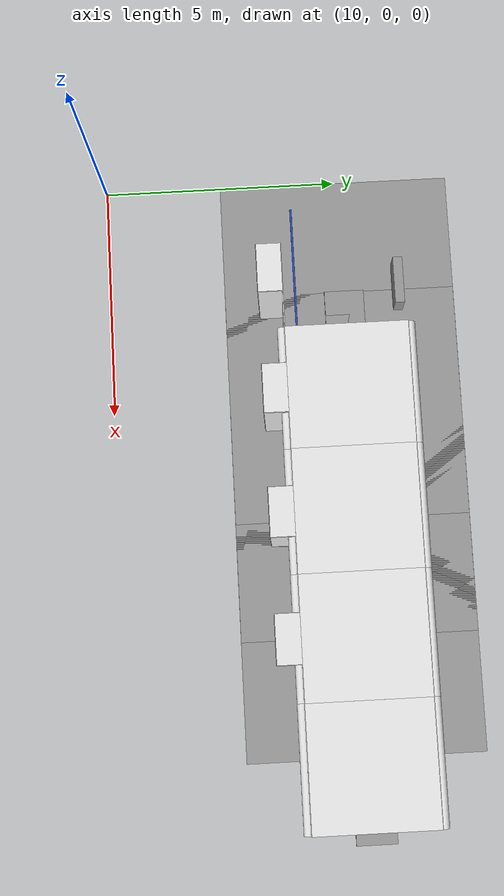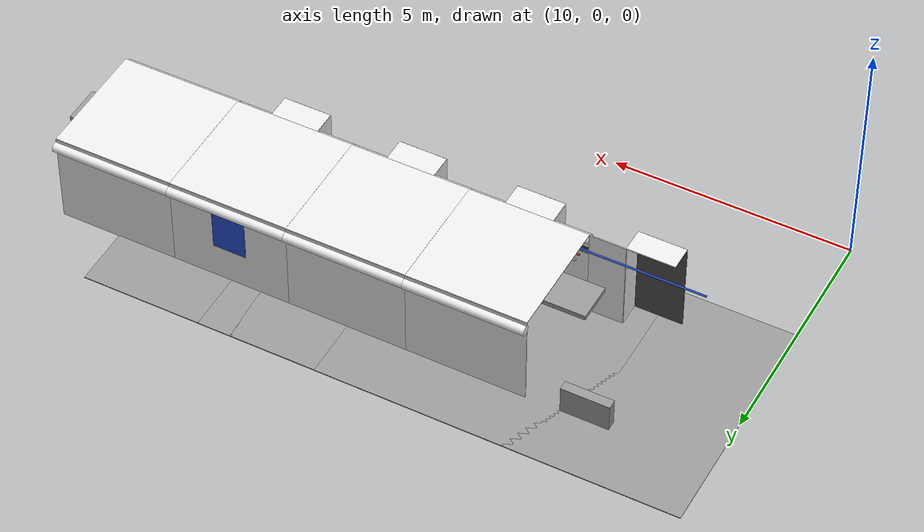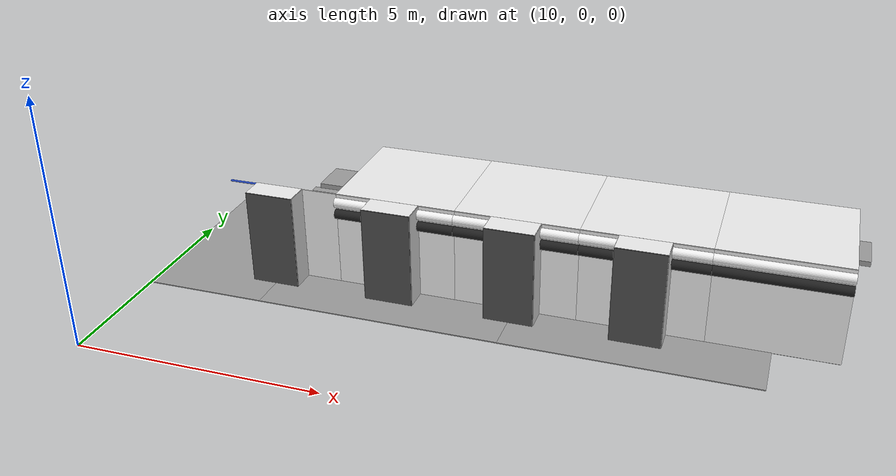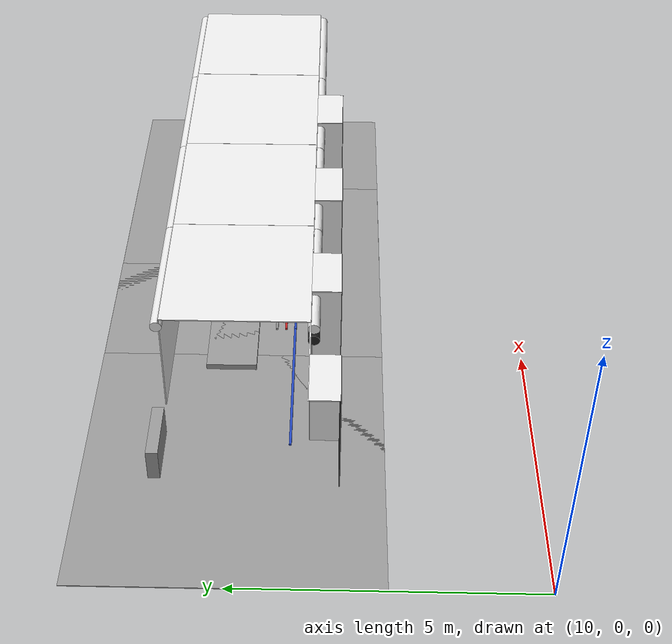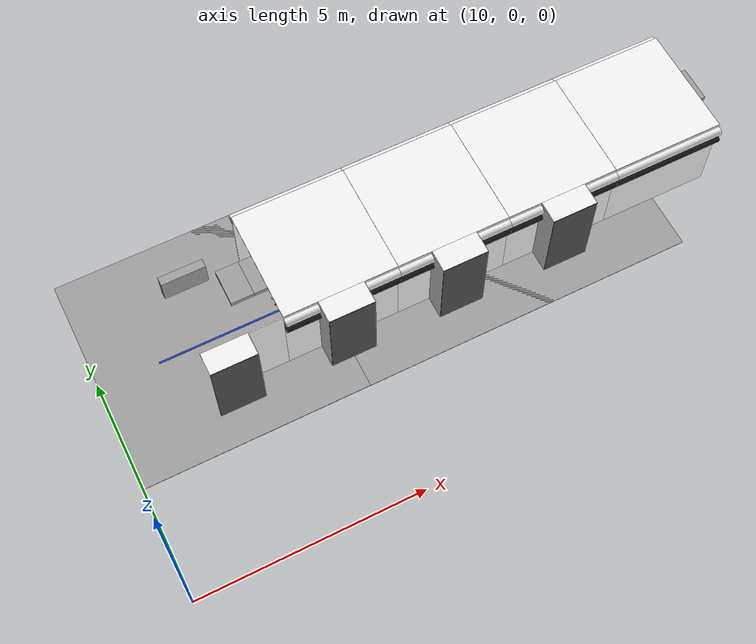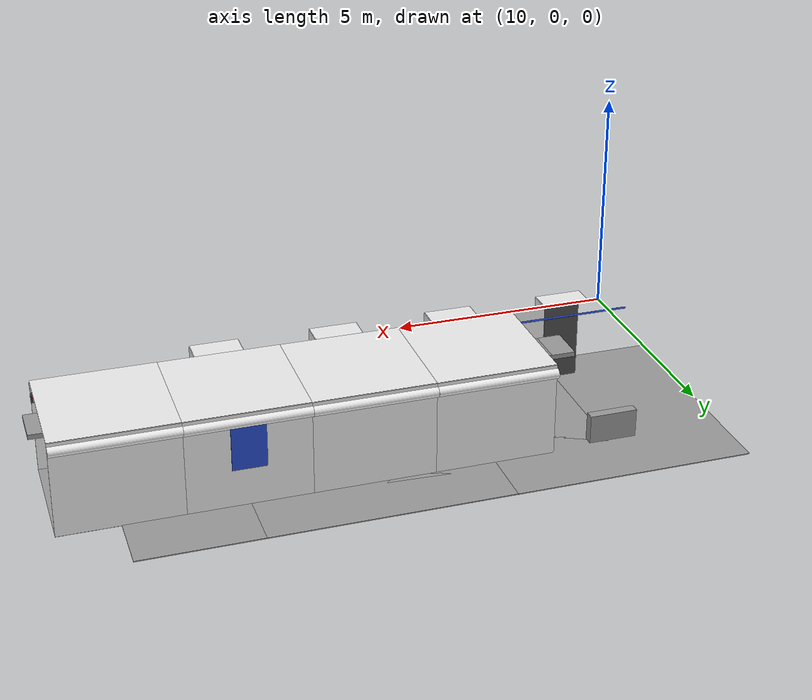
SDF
<sdf version="1.6">
 <world name="default">
  <model name="ceiling_1_5_2_2_1">
   <pose>13.5 5.0 1.7 0.0 0.0 -1.57</pose>
   <link name="link_1">
    <visual name="visual">
     <geometry><box><size>0.8 1 0.1</size></box></geometry>
     <material>
      <script><uri>file://media/materials/scripts/gazebo.material</uri><name>Gazebo/Grey</name></script>
     </material>
    </visual>
    <collision name="collision"><geometry><box><size>0.8 1 0.1</size></box></geometry></collision>
   </link>
   <static>1</static>
  </model>
  <model name="blue_pipe_right_5_2_0_1">
   <static>1</static>
   <pose>12.5 5.0 1.84 0.0 0.0 -1.57</pose>
   <link name="link_0">
    <visual name="visual">
     <pose>1 0 0 1.57 0 0</pose>
     <geometry><cylinder><radius>0.02</radius><length>2.5</length></cylinder></geometry>
     <material>
      <script><uri>file://media/materials/scripts/gazebo.material</uri><name>Gazebo/Blue</name></script>
     </material>
    </visual>
    <collision name="collision">
     <pose>1 0 0 1.57 0 0</pose>
     <geometry><cylinder><radius>0.02</radius><length>2.5</length></cylinder></geometry>
    </collision>
   </link>
  </model>
  <model name="wall_bottom_5_2_0_1">
   <static>1</static>
   <pose>12.5 5.0 0.0 0.0 0.0 -1.57</pose>
   <link name="link">
    <collision name="collision"><geometry><box><size>5.0 5.0 0.02</size></box></geometry></collision>
    <visual name="visual">
     <material>
      <script><name>Gazebo/Grey</name><uri>file://media/materials/scripts/gazebo.material</uri></script>
     </material>
     <geometry><box><size>5.0 5.0 0.02</size></box></geometry>
    </visual>
   </link>
  </model>
  <model name="wall_right_front_left_5_2_0_1">
   <static>1</static>
   <pose>13.375 3.75 1.0 0.0 0.0 0.0</pose>
   <link name="link">
    <collision name="collision"><geometry><box><size>0.75 0.02 2.0</size></box></geometry></collision>
    <visual name="visual">
     <material>
      <script><name>Gazebo/White</name><uri>file://media/materials/scripts/gazebo.material</uri></script>
     </material>
     <geometry><box><size>0.75 0.02 2.0</size></box></geometry>
    </visual>
   </link>
  </model>
  <model name="wall_right_front_up_5_2_0_1">
   <static>1</static>
   <pose>12.5 3.75 2.0 0.0 0.0 0.0</pose>
   <link name="link">
    <collision name="collision"><geometry><box><size>1.0 0.02 0.001</size></box></geometry></collision>
    <visual name="visual">
     <material>
      <script><name>Gazebo/White</name><uri>file://media/materials/scripts/gazebo.material</uri></script>
     </material>
     <geometry><box><size>1.0 0.02 0.001</size></box></geometry>
    </visual>
   </link>
  </model>
  <model name="wall_right_inside_back_5_2_0_1">
   <static>1</static>
   <pose>12.5 3.25 1.0 0.0 0.0 0.0</pose>
   <link name="link">
    <collision name="collision"><geometry><box><size>1 0.02 2</size></box></geometry></collision>
    <visual name="visual">
     <material>
      <script><name>Gazebo/DarkGrey</name><uri>file://media/materials/scripts/gazebo.material</uri></script>
     </material>
     <geometry><box><size>1 0.02 2</size></box></geometry>
    </visual>
   </link>
  </model>
  <model name="wall_right_inside_left_5_2_0_1">
   <static>1</static>
   <pose>13.0 3.5 1.0 0.0 0.0 -1.57</pose>
   <link name="link">
    <collision name="collision"><geometry><box><size>0.5 0.02 2</size></box></geometry></collision>
    <visual name="visual">
     <material>
      <script><name>Gazebo/White</name><uri>file://media/materials/scripts/gazebo.material</uri></script>
     </material>
     <geometry><box><size>0.5 0.02 2</size></box></geometry>
    </visual>
   </link>
  </model>
  <model name="wall_right_inside_top_5_2_0_1">
   <static>1</static>
   <pose>12.5 3.5 2.0 1.57 0.0 0.0</pose>
   <link name="link">
    <collision name="collision"><geometry><box><size>1 0.02 0.5</size></box></geometry></collision>
    <visual name="visual">
     <material>
      <script><name>Gazebo/White</name><uri>file://media/materials/scripts/gazebo.material</uri></script>
     </material>
     <geometry><box><size>1 0.02 0.5</size></box></geometry>
    </visual>
   </link>
  </model>
  <model name="panel_5_2_0_1">
   <static>1</static>
   <pose>12.5 6.25 0.44 0.0 0.0 -1.57</pose>
   <link name="link">
    <collision name="collision"><geometry><box><size>0.2 1 0.6</size></box></geometry></collision>
    <visual name="visual">
     <material>
      <script><name>Gazebo/Grey</name><uri>file://media/materials/scripts/gazebo.material</uri></script>
     </material>
     <geometry><box><size>0.2 1 0.6</size></box></geometry>
    </visual>
   </link>
  </model>
  <model name="wall_left_6_2_0_1">
   <static>1</static>
   <pose>15.0 6.25 1.0 0.0 0.0 0.0</pose>
   <link name="link">
    <collision name="collision"><geometry><box><size>2.5 0.02 2.0</size></box></geometry></collision>
    <visual name="visual">
     <material>
      <script><name>Gazebo/White</name><uri>file://media/materials/scripts/gazebo.material</uri></script>
     </material>
     <geometry><box><size>2.5 0.02 2.0</size></box></geometry>
    </visual>
   </link>
  </model>
  <model name="wall_top_6_2_0_1">
   <static>1</static>
   <pose>15.0 5.0 2.0 1.57 0.0 -1.57</pose>
   <link name="link">
    <collision name="collision"><geometry><box><size>2.5 0.02 2.5</size></box></geometry></collision>
    <visual name="visual">
     <material>
      <script><name>Gazebo/White</name><uri>file://media/materials/scripts/gazebo.material</uri></script>
     </material>
     <geometry><box><size>2.5 0.02 2.5</size></box></geometry>
    </visual>
   </link>
  </model>
  <model name="ceiling_1_6_2_0_1">
   <pose>15.0 5.0 1.7 0.0 0.0 -1.57</pose>
   <link name="link_1">
    <visual name="visual">
     <geometry><box><size>0.8 1 0.1</size></box></geometry>
     <material>
      <script><uri>file://media/materials/scripts/gazebo.material</uri><name>Gazebo/Grey</name></script>
     </material>
    </visual>
    <collision name="collision"><geometry><box><size>0.8 1 0.1</size></box></geometry></collision>
   </link>
   <static>1</static>
  </model>
  <model name="ceiling_1_6_2_1_1">
   <pose>14.0 5.0 1.7 0.0 0.0 -1.57</pose>
   <link name="link_1">
    <visual name="visual">
     <geometry><box><size>0.8 1 0.1</size></box></geometry>
     <material>
      <script><uri>file://media/materials/scripts/gazebo.material</uri><name>Gazebo/Grey</name></script>
     </material>
    </visual>
    <collision name="collision"><geometry><box><size>0.8 1 0.1</size></box></geometry></collision>
   </link>
   <static>1</static>
  </model>
  <model name="ceiling_1_6_2_2_1">
   <pose>16.0 5.0 1.7 0.0 0.0 -1.57</pose>
   <link name="link_1">
    <visual name="visual">
     <geometry><box><size>0.8 1 0.1</size></box></geometry>
     <material>
      <script><uri>file://media/materials/scripts/gazebo.material</uri><name>Gazebo/Grey</name></script>
     </material>
    </visual>
    <collision name="collision"><geometry><box><size>0.8 1 0.1</size></box></geometry></collision>
   </link>
   <static>1</static>
  </model>
  <model name="white_pipe_left_6_2_0_1">
   <static>1</static>
   <pose>15.0 5.0 1.84 0.0 0.0 -1.57</pose>
   <link name="link_0">
    <visual name="visual">
     <pose>-1.3 0 0 1.57 0 0</pose>
     <geometry><cylinder><radius>0.1</radius><length>2.5</length></cylinder></geometry>
     <material>
      <script><uri>file://media/materials/scripts/gazebo.material</uri><name>Gazebo/White</name></script>
     </material>
    </visual>
    <collision name="collision">
     <pose>-1.3 0 0 1.57 0 0</pose>
     <geometry><cylinder><radius>0.1</radius><length>2.5</length></cylinder></geometry>
    </collision>
   </link>
  </model>
  <model name="white_pipe_right_6_2_0_1">
   <static>1</static>
   <pose>15.0 5.0 1.84 0.0 0.0 -1.57</pose>
   <link name="link_0">
    <visual name="visual">
     <pose>1.3 0 0 1.57 0 0</pose>
     <geometry><cylinder><radius>0.1</radius><length>2.5</length></cylinder></geometry>
     <material>
      <script><uri>file://media/materials/scripts/gazebo.material</uri><name>Gazebo/White</name></script>
     </material>
    </visual>
    <collision name="collision">
     <pose>1.3 0 0 1.57 0 0</pose>
     <geometry><cylinder><radius>0.1</radius><length>2.5</length></cylinder></geometry>
    </collision>
   </link>
  </model>
  <model name="black_pipe_right_6_2_0_1">
   <static>1</static>
   <pose>15.0 5.0 1.84 0.0 0.0 -1.57</pose>
   <link name="link_0">
    <visual name="visual">
     <pose>1.3 0 -0.25 1.57 0 0</pose>
     <geometry><cylinder><radius>0.1</radius><length>2.5</length></cylinder></geometry>
     <material>
      <script><uri>file://media/materials/scripts/gazebo.material</uri><name>Gazebo/Black</name></script>
     </material>
    </visual>
    <collision name="collision">
     <pose>1.3 0 -0.25 1.57 0 0</pose>
     <geometry><cylinder><radius>0.1</radius><length>2.5</length></cylinder></geometry>
    </collision>
   </link>
  </model>
  <model name="grey_pipe_right_6_2_0_1">
   <static>1</static>
   <pose>15.0 5.0 1.84 0.0 0.0 -1.57</pose>
   <link name="link_0">
    <visual name="visual">
     <pose>0.7 0 0 1.57 0 0</pose>
     <geometry><cylinder><radius>0.02</radius><length>2.5</length></cylinder></geometry>
     <material>
      <script><uri>file://media/materials/scripts/gazebo.material</uri><name>Gazebo/Grey</name></script>
     </material>
    </visual>
    <collision name="collision">
     <pose>0.7 0 0 1.57 0 0</pose>
     <geometry><cylinder><radius>0.02</radius><length>2.5</length></cylinder></geometry>
    </collision>
   </link>
  </model>
  <model name="red_pipe_right_6_2_0_1">
   <static>1</static>
   <pose>15.0 5.0 1.84 0.0 0.0 -1.57</pose>
   <link name="link_0">
    <visual name="visual">
     <pose>0.85 0 0 1.57 0 0</pose>
     <geometry><cylinder><radius>0.02</radius><length>2.5</length></cylinder></geometry>
     <material>
      <script><uri>file://media/materials/scripts/gazebo.material</uri><name>Gazebo/Red</name></script>
     </material>
    </visual>
    <collision name="collision">
     <pose>0.85 0 0 1.57 0 0</pose>
     <geometry><cylinder><radius>0.02</radius><length>2.5</length></cylinder></geometry>
    </collision>
   </link>
  </model>
  <model name="blue_pipe_right_6_2_0_1">
   <static>1</static>
   <pose>15.0 5.0 1.84 0.0 0.0 -1.57</pose>
   <link name="link_0">
    <visual name="visual">
     <pose>1 0 0 1.57 0 0</pose>
     <geometry><cylinder><radius>0.02</radius><length>2.5</length></cylinder></geometry>
     <material>
      <script><uri>file://media/materials/scripts/gazebo.material</uri><name>Gazebo/Blue</name></script>
     </material>
    </visual>
    <collision name="collision">
     <pose>1 0 0 1.57 0 0</pose>
     <geometry><cylinder><radius>0.02</radius><length>2.5</length></cylinder></geometry>
    </collision>
   </link>
  </model>
  <model name="wall_right_front_left_6_2_0_1">
   <static>1</static>
   <pose>15.875 3.75 1.0 0.0 0.0 0.0</pose>
   <link name="link">
    <collision name="collision"><geometry><box><size>0.75 0.02 2.0</size></box></geometry></collision>
    <visual name="visual">
     <material>
      <script><name>Gazebo/White</name><uri>file://media/materials/scripts/gazebo.material</uri></script>
     </material>
     <geometry><box><size>0.75 0.02 2.0</size></box></geometry>
    </visual>
   </link>
  </model>
  <model name="wall_right_front_right_6_2_0_1">
   <static>1</static>
   <pose>14.125 3.75 1.0 0.0 0.0 0.0</pose>
   <link name="link">
    <collision name="collision"><geometry><box><size>0.75 0.02 2.0</size></box></geometry></collision>
    <visual name="visual">
     <material>
      <script><name>Gazebo/White</name><uri>file://media/materials/scripts/gazebo.material</uri></script>
     </material>
     <geometry><box><size>0.75 0.02 2.0</size></box></geometry>
    </visual>
   </link>
  </model>
  <model name="wall_right_front_up_6_2_0_1">
   <static>1</static>
   <pose>15.0 3.75 2.0 0.0 0.0 0.0</pose>
   <link name="link">
    <collision name="collision"><geometry><box><size>1.0 0.02 0.001</size></box></geometry></collision>
    <visual name="visual">
     <material>
      <script><name>Gazebo/White</name><uri>file://media/materials/scripts/gazebo.material</uri></script>
     </material>
     <geometry><box><size>1.0 0.02 0.001</size></box></geometry>
    </visual>
   </link>
  </model>
  <model name="wall_right_inside_back_6_2_0_1">
   <static>1</static>
   <pose>15.0 3.25 1.0 0.0 0.0 0.0</pose>
   <link name="link">
    <collision name="collision"><geometry><box><size>1 0.02 2</size></box></geometry></collision>
    <visual name="visual">
     <material>
      <script><name>Gazebo/DarkGrey</name><uri>file://media/materials/scripts/gazebo.material</uri></script>
     </material>
     <geometry><box><size>1 0.02 2</size></box></geometry>
    </visual>
   </link>
  </model>
  <model name="wall_right_inside_left_6_2_0_1">
   <static>1</static>
   <pose>15.5 3.5 1.0 0.0 0.0 -1.57</pose>
   <link name="link">
    <collision name="collision"><geometry><box><size>0.5 0.02 2</size></box></geometry></collision>
    <visual name="visual">
     <material>
      <script><name>Gazebo/White</name><uri>file://media/materials/scripts/gazebo.material</uri></script>
     </material>
     <geometry><box><size>0.5 0.02 2</size></box></geometry>
    </visual>
   </link>
  </model>
  <model name="wall_right_inside_right_6_2_0_1">
   <static>1</static>
   <pose>14.5 3.5 1.0 0.0 0.0 -1.57</pose>
   <link name="link">
    <collision name="collision"><geometry><box><size>0.5 0.02 2</size></box></geometry></collision>
    <visual name="visual">
     <material>
      <script><name>Gazebo/White</name><uri>file://media/materials/scripts/gazebo.material</uri></script>
     </material>
     <geometry><box><size>0.5 0.02 2</size></box></geometry>
    </visual>
   </link>
  </model>
  <model name="wall_right_inside_top_6_2_0_1">
   <static>1</static>
   <pose>15.0 3.5 2.0 1.57 0.0 0.0</pose>
   <link name="link">
    <collision name="collision"><geometry><box><size>1 0.02 0.5</size></box></geometry></collision>
    <visual name="visual">
     <material>
      <script><name>Gazebo/White</name><uri>file://media/materials/scripts/gazebo.material</uri></script>
     </material>
     <geometry><box><size>1 0.02 0.5</size></box></geometry>
    </visual>
   </link>
  </model>
  <model name="wall_bottom_6_2_0_1">
   <static>1</static>
   <pose>15.0 5.0 0.0 0.0 0.0 -1.57</pose>
   <link name="link">
    <collision name="collision"><geometry><box><size>5.0 5.0 0.02</size></box></geometry></collision>
    <visual name="visual">
     <material>
      <script><name>Gazebo/Grey</name><uri>file://media/materials/scripts/gazebo.material</uri></script>
     </material>
     <geometry><box><size>5.0 5.0 0.02</size></box></geometry>
    </visual>
   </link>
  </model>
  <model name="wall_left_7_2_0_1">
   <static>1</static>
   <pose>17.5 6.25 1.0 0.0 0.0 0.0</pose>
   <link name="link">
    <collision name="collision"><geometry><box><size>2.5 0.02 2.0</size></box></geometry></collision>
    <visual name="visual">
     <material>
      <script><name>Gazebo/White</name><uri>file://media/materials/scripts/gazebo.material</uri></script>
     </material>
     <geometry><box><size>2.5 0.02 2.0</size></box></geometry>
    </visual>
   </link>
  </model>
  <model name="wall_top_7_2_0_1">
   <static>1</static>
   <pose>17.5 5.0 2.0 1.57 0.0 -1.57</pose>
   <link name="link">
    <collision name="collision"><geometry><box><size>2.5 0.02 2.5</size></box></geometry></collision>
    <visual name="visual">
     <material>
      <script><name>Gazebo/White</name><uri>file://media/materials/scripts/gazebo.material</uri></script>
     </material>
     <geometry><box><size>2.5 0.02 2.5</size></box></geometry>
    </visual>
   </link>
  </model>
  <model name="ceiling_1_7_2_0_1">
   <pose>17.5 5.0 1.7 0.0 0.0 -1.57</pose>
   <link name="link_1">
    <visual name="visual">
     <geometry><box><size>0.8 1 0.1</size></box></geometry>
     <material>
      <script><uri>file://media/materials/scripts/gazebo.material</uri><name>Gazebo/Grey</name></script>
     </material>
    </visual>
    <collision name="collision"><geometry><box><size>0.8 1 0.1</size></box></geometry></collision>
   </link>
   <static>1</static>
  </model>
  <model name="ceiling_1_7_2_1_1">
   <pose>16.5 5.0 1.7 0.0 0.0 -1.57</pose>
   <link name="link_1">
    <visual name="visual">
     <geometry><box><size>0.8 1 0.1</size></box></geometry>
     <material>
      <script><uri>file://media/materials/scripts/gazebo.material</uri><name>Gazebo/Grey</name></script>
     </material>
    </visual>
    <collision name="collision"><geometry><box><size>0.8 1 0.1</size></box></geometry></collision>
   </link>
   <static>1</static>
  </model>
  <model name="ceiling_1_7_2_2_1">
   <pose>18.5 5.0 1.7 0.0 0.0 -1.57</pose>
   <link name="link_1">
    <visual name="visual">
     <geometry><box><size>0.8 1 0.1</size></box></geometry>
     <material>
      <script><uri>file://media/materials/scripts/gazebo.material</uri><name>Gazebo/Grey</name></script>
     </material>
    </visual>
    <collision name="collision"><geometry><box><size>0.8 1 0.1</size></box></geometry></collision>
   </link>
   <static>1</static>
  </model>
  <model name="white_pipe_left_7_2_0_1">
   <static>1</static>
   <pose>17.5 5.0 1.84 0.0 0.0 -1.57</pose>
   <link name="link_0">
    <visual name="visual">
     <pose>-1.3 0 0 1.57 0 0</pose>
     <geometry><cylinder><radius>0.1</radius><length>2.5</length></cylinder></geometry>
     <material>
      <script><uri>file://media/materials/scripts/gazebo.material</uri><name>Gazebo/White</name></script>
     </material>
    </visual>
    <collision name="collision">
     <pose>-1.3 0 0 1.57 0 0</pose>
     <geometry><cylinder><radius>0.1</radius><length>2.5</length></cylinder></geometry>
    </collision>
   </link>
  </model>
  <model name="white_pipe_right_7_2_0_1">
   <static>1</static>
   <pose>17.5 5.0 1.84 0.0 0.0 -1.57</pose>
   <link name="link_0">
    <visual name="visual">
     <pose>1.3 0 0 1.57 0 0</pose>
     <geometry><cylinder><radius>0.1</radius><length>2.5</length></cylinder></geometry>
     <material>
      <script><uri>file://media/materials/scripts/gazebo.material</uri><name>Gazebo/White</name></script>
     </material>
    </visual>
    <collision name="collision">
     <pose>1.3 0 0 1.57 0 0</pose>
     <geometry><cylinder><radius>0.1</radius><length>2.5</length></cylinder></geometry>
    </collision>
   </link>
  </model>
  <model name="black_pipe_right_7_2_0_1">
   <static>1</static>
   <pose>17.5 5.0 1.84 0.0 0.0 -1.57</pose>
   <link name="link_0">
    <visual name="visual">
     <pose>1.3 0 -0.25 1.57 0 0</pose>
     <geometry><cylinder><radius>0.1</radius><length>2.5</length></cylinder></geometry>
     <material>
      <script><uri>file://media/materials/scripts/gazebo.material</uri><name>Gazebo/Black</name></script>
     </material>
    </visual>
    <collision name="collision">
     <pose>1.3 0 -0.25 1.57 0 0</pose>
     <geometry><cylinder><radius>0.1</radius><length>2.5</length></cylinder></geometry>
    </collision>
   </link>
  </model>
  <model name="grey_pipe_right_7_2_0_1">
   <static>1</static>
   <pose>17.5 5.0 1.84 0.0 0.0 -1.57</pose>
   <link name="link_0">
    <visual name="visual">
     <pose>0.7 0 0 1.57 0 0</pose>
     <geometry><cylinder><radius>0.02</radius><length>2.5</length></cylinder></geometry>
     <material>
      <script><uri>file://media/materials/scripts/gazebo.material</uri><name>Gazebo/Grey</name></script>
     </material>
    </visual>
    <collision name="collision">
     <pose>0.7 0 0 1.57 0 0</pose>
     <geometry><cylinder><radius>0.02</radius><length>2.5</length></cylinder></geometry>
    </collision>
   </link>
  </model>
  <model name="red_pipe_right_7_2_0_1">
   <static>1</static>
   <pose>17.5 5.0 1.84 0.0 0.0 -1.57</pose>
   <link name="link_0">
    <visual name="visual">
     <pose>0.85 0 0 1.57 0 0</pose>
     <geometry><cylinder><radius>0.02</radius><length>2.5</length></cylinder></geometry>
     <material>
      <script><uri>file://media/materials/scripts/gazebo.material</uri><name>Gazebo/Red</name></script>
     </material>
    </visual>
    <collision name="collision">
     <pose>0.85 0 0 1.57 0 0</pose>
     <geometry><cylinder><radius>0.02</radius><length>2.5</length></cylinder></geometry>
    </collision>
   </link>
  </model>
  <model name="blue_pipe_right_7_2_0_1">
   <static>1</static>
   <pose>17.5 5.0 1.84 0.0 0.0 -1.57</pose>
   <link name="link_0">
    <visual name="visual">
     <pose>1 0 0 1.57 0 0</pose>
     <geometry><cylinder><radius>0.02</radius><length>2.5</length></cylinder></geometry>
     <material>
      <script><uri>file://media/materials/scripts/gazebo.material</uri><name>Gazebo/Blue</name></script>
     </material>
    </visual>
    <collision name="collision">
     <pose>1 0 0 1.57 0 0</pose>
     <geometry><cylinder><radius>0.02</radius><length>2.5</length></cylinder></geometry>
    </collision>
   </link>
  </model>
  <model name="wall_right_front_left_7_2_0_1">
   <static>1</static>
   <pose>18.375 3.75 1.0 0.0 0.0 0.0</pose>
   <link name="link">
    <collision name="collision"><geometry><box><size>0.75 0.02 2.0</size></box></geometry></collision>
    <visual name="visual">
     <material>
      <script><name>Gazebo/White</name><uri>file://media/materials/scripts/gazebo.material</uri></script>
     </material>
     <geometry><box><size>0.75 0.02 2.0</size></box></geometry>
    </visual>
   </link>
  </model>
  <model name="wall_right_front_right_7_2_0_1">
   <static>1</static>
   <pose>16.625 3.75 1.0 0.0 0.0 0.0</pose>
   <link name="link">
    <collision name="collision"><geometry><box><size>0.75 0.02 2.0</size></box></geometry></collision>
    <visual name="visual">
     <material>
      <script><name>Gazebo/White</name><uri>file://media/materials/scripts/gazebo.material</uri></script>
     </material>
     <geometry><box><size>0.75 0.02 2.0</size></box></geometry>
    </visual>
   </link>
  </model>
  <model name="wall_right_front_up_7_2_0_1">
   <static>1</static>
   <pose>17.5 3.75 2.0 0.0 0.0 0.0</pose>
   <link name="link">
    <collision name="collision"><geometry><box><size>1.0 0.02 0.001</size></box></geometry></collision>
    <visual name="visual">
     <material>
      <script><name>Gazebo/White</name><uri>file://media/materials/scripts/gazebo.material</uri></script>
     </material>
     <geometry><box><size>1.0 0.02 0.001</size></box></geometry>
    </visual>
   </link>
  </model>
  <model name="wall_right_inside_back_7_2_0_1">
   <static>1</static>
   <pose>17.5 3.25 1.0 0.0 0.0 0.0</pose>
   <link name="link">
    <collision name="collision"><geometry><box><size>1 0.02 2</size></box></geometry></collision>
    <visual name="visual">
     <material>
      <script><name>Gazebo/DarkGrey</name><uri>file://media/materials/scripts/gazebo.material</uri></script>
     </material>
     <geometry><box><size>1 0.02 2</size></box></geometry>
    </visual>
   </link>
  </model>
  <model name="wall_right_inside_left_7_2_0_1">
   <static>1</static>
   <pose>18.0 3.5 1.0 0.0 0.0 -1.57</pose>
   <link name="link">
    <collision name="collision"><geometry><box><size>0.5 0.02 2</size></box></geometry></collision>
    <visual name="visual">
     <material>
      <script><name>Gazebo/White</name><uri>file://media/materials/scripts/gazebo.material</uri></script>
     </material>
     <geometry><box><size>0.5 0.02 2</size></box></geometry>
    </visual>
   </link>
  </model>
  <model name="wall_right_inside_right_7_2_0_1">
   <static>1</static>
   <pose>17.0 3.5 1.0 0.0 0.0 -1.57</pose>
   <link name="link">
    <collision name="collision"><geometry><box><size>0.5 0.02 2</size></box></geometry></collision>
    <visual name="visual">
     <material>
      <script><name>Gazebo/White</name><uri>file://media/materials/scripts/gazebo.material</uri></script>
     </material>
     <geometry><box><size>0.5 0.02 2</size></box></geometry>
    </visual>
   </link>
  </model>
  <model name="wall_right_inside_top_7_2_0_1">
   <static>1</static>
   <pose>17.5 3.5 2.0 1.57 0.0 0.0</pose>
   <link name="link">
    <collision name="collision"><geometry><box><size>1 0.02 0.5</size></box></geometry></collision>
    <visual name="visual">
     <material>
      <script><name>Gazebo/White</name><uri>file://media/materials/scripts/gazebo.material</uri></script>
     </material>
     <geometry><box><size>1 0.02 0.5</size></box></geometry>
    </visual>
   </link>
  </model>
  <model name="wall_bottom_7_2_0_1">
   <static>1</static>
   <pose>17.5 5.0 0.0 0.0 0.0 -1.57</pose>
   <link name="link">
    <collision name="collision"><geometry><box><size>5.0 5.0 0.02</size></box></geometry></collision>
    <visual name="visual">
     <material>
      <script><name>Gazebo/Grey</name><uri>file://media/materials/scripts/gazebo.material</uri></script>
     </material>
     <geometry><box><size>5.0 5.0 0.02</size></box></geometry>
    </visual>
   </link>
  </model>
  <model name="wall_left_8_2_0_1">
   <static>1</static>
   <pose>20.0 6.25 1.0 0.0 0.0 0.0</pose>
   <link name="link">
    <collision name="collision"><geometry><box><size>2.5 0.02 2.0</size></box></geometry></collision>
    <visual name="visual">
     <material>
      <script><name>Gazebo/White</name><uri>file://media/materials/scripts/gazebo.material</uri></script>
     </material>
     <geometry><box><size>2.5 0.02 2.0</size></box></geometry>
    </visual>
   </link>
  </model>
  <model name="wall_top_8_2_0_1">
   <static>1</static>
   <pose>20.0 5.0 2.0 1.57 0.0 -1.57</pose>
   <link name="link">
    <collision name="collision"><geometry><box><size>2.5 0.02 2.5</size></box></geometry></collision>
    <visual name="visual">
     <material>
      <script><name>Gazebo/White</name><uri>file://media/materials/scripts/gazebo.material</uri></script>
     </material>
     <geometry><box><size>2.5 0.02 2.5</size></box></geometry>
    </visual>
   </link>
  </model>
  <model name="ceiling_1_8_2_0_1">
   <pose>20.0 5.0 1.7 0.0 0.0 -1.57</pose>
   <link name="link_1">
    <visual name="visual">
     <geometry><box><size>0.8 1 0.1</size></box></geometry>
     <material>
      <script><uri>file://media/materials/scripts/gazebo.material</uri><name>Gazebo/Grey</name></script>
     </material>
    </visual>
    <collision name="collision"><geometry><box><size>0.8 1 0.1</size></box></geometry></collision>
   </link>
   <static>1</static>
  </model>
  <model name="ceiling_1_8_2_1_1">
   <pose>19.0 5.0 1.7 0.0 0.0 -1.57</pose>
   <link name="link_1">
    <visual name="visual">
     <geometry><box><size>0.8 1 0.1</size></box></geometry>
     <material>
      <script><uri>file://media/materials/scripts/gazebo.material</uri><name>Gazebo/Grey</name></script>
     </material>
    </visual>
    <collision name="collision"><geometry><box><size>0.8 1 0.1</size></box></geometry></collision>
   </link>
   <static>1</static>
  </model>
  <model name="ceiling_1_8_2_2_1">
   <pose>21.0 5.0 1.7 0.0 0.0 -1.57</pose>
   <link name="link_1">
    <visual name="visual">
     <geometry><box><size>0.8 1 0.1</size></box></geometry>
     <material>
      <script><uri>file://media/materials/scripts/gazebo.material</uri><name>Gazebo/Grey</name></script>
     </material>
    </visual>
    <collision name="collision"><geometry><box><size>0.8 1 0.1</size></box></geometry></collision>
   </link>
   <static>1</static>
  </model>
  <model name="white_pipe_left_8_2_0_1">
   <static>1</static>
   <pose>20.0 5.0 1.84 0.0 0.0 -1.57</pose>
   <link name="link_0">
    <visual name="visual">
     <pose>-1.3 0 0 1.57 0 0</pose>
     <geometry><cylinder><radius>0.1</radius><length>2.5</length></cylinder></geometry>
     <material>
      <script><uri>file://media/materials/scripts/gazebo.material</uri><name>Gazebo/White</name></script>
     </material>
    </visual>
    <collision name="collision">
     <pose>-1.3 0 0 1.57 0 0</pose>
     <geometry><cylinder><radius>0.1</radius><length>2.5</length></cylinder></geometry>
    </collision>
   </link>
  </model>
  <model name="white_pipe_right_8_2_0_1">
   <static>1</static>
   <pose>20.0 5.0 1.84 0.0 0.0 -1.57</pose>
   <link name="link_0">
    <visual name="visual">
     <pose>1.3 0 0 1.57 0 0</pose>
     <geometry><cylinder><radius>0.1</radius><length>2.5</length></cylinder></geometry>
     <material>
      <script><uri>file://media/materials/scripts/gazebo.material</uri><name>Gazebo/White</name></script>
     </material>
    </visual>
    <collision name="collision">
     <pose>1.3 0 0 1.57 0 0</pose>
     <geometry><cylinder><radius>0.1</radius><length>2.5</length></cylinder></geometry>
    </collision>
   </link>
  </model>
  <model name="black_pipe_right_8_2_0_1">
   <static>1</static>
   <pose>20.0 5.0 1.84 0.0 0.0 -1.57</pose>
   <link name="link_0">
    <visual name="visual">
     <pose>1.3 0 -0.25 1.57 0 0</pose>
     <geometry><cylinder><radius>0.1</radius><length>2.5</length></cylinder></geometry>
     <material>
      <script><uri>file://media/materials/scripts/gazebo.material</uri><name>Gazebo/Black</name></script>
     </material>
    </visual>
    <collision name="collision">
     <pose>1.3 0 -0.25 1.57 0 0</pose>
     <geometry><cylinder><radius>0.1</radius><length>2.5</length></cylinder></geometry>
    </collision>
   </link>
  </model>
  <model name="grey_pipe_right_8_2_0_1">
   <static>1</static>
   <pose>20.0 5.0 1.84 0.0 0.0 -1.57</pose>
   <link name="link_0">
    <visual name="visual">
     <pose>0.7 0 0 1.57 0 0</pose>
     <geometry><cylinder><radius>0.02</radius><length>2.5</length></cylinder></geometry>
     <material>
      <script><uri>file://media/materials/scripts/gazebo.material</uri><name>Gazebo/Grey</name></script>
     </material>
    </visual>
    <collision name="collision">
     <pose>0.7 0 0 1.57 0 0</pose>
     <geometry><cylinder><radius>0.02</radius><length>2.5</length></cylinder></geometry>
    </collision>
   </link>
  </model>
  <model name="red_pipe_right_8_2_0_1">
   <static>1</static>
   <pose>20.0 5.0 1.84 0.0 0.0 -1.57</pose>
   <link name="link_0">
    <visual name="visual">
     <pose>0.85 0 0 1.57 0 0</pose>
     <geometry><cylinder><radius>0.02</radius><length>2.5</length></cylinder></geometry>
     <material>
      <script><uri>file://media/materials/scripts/gazebo.material</uri><name>Gazebo/Red</name></script>
     </material>
    </visual>
    <collision name="collision">
     <pose>0.85 0 0 1.57 0 0</pose>
     <geometry><cylinder><radius>0.02</radius><length>2.5</length></cylinder></geometry>
    </collision>
   </link>
  </model>
  <model name="blue_pipe_right_8_2_0_1">
   <static>1</static>
   <pose>20.0 5.0 1.84 0.0 0.0 -1.57</pose>
   <link name="link_0">
    <visual name="visual">
     <pose>1 0 0 1.57 0 0</pose>
     <geometry><cylinder><radius>0.02</radius><length>2.5</length></cylinder></geometry>
     <material>
      <script><uri>file://media/materials/scripts/gazebo.material</uri><name>Gazebo/Blue</name></script>
     </material>
    </visual>
    <collision name="collision">
     <pose>1 0 0 1.57 0 0</pose>
     <geometry><cylinder><radius>0.02</radius><length>2.5</length></cylinder></geometry>
    </collision>
   </link>
  </model>
  <model name="panel_8_2_0_1">
   <static>1</static>
   <pose>20.0 6.25 1.3 0.0 0.0 -1.57</pose>
   <link name="link">
    <collision name="collision"><geometry><box><size>0.04 0.7 1</size></box></geometry></collision>
    <visual name="visual">
     <material>
      <script><name>Gazebo/Blue</name><uri>file://media/materials/scripts/gazebo.material</uri></script>
     </material>
     <geometry><box><size>0.04 0.7 1</size></box></geometry>
    </visual>
   </link>
  </model>
  <model name="wall_right_front_left_8_2_0_1">
   <static>1</static>
   <pose>20.875 3.75 1.0 0.0 0.0 0.0</pose>
   <link name="link">
    <collision name="collision"><geometry><box><size>0.75 0.02 2.0</size></box></geometry></collision>
    <visual name="visual">
     <material>
      <script><name>Gazebo/White</name><uri>file://media/materials/scripts/gazebo.material</uri></script>
     </material>
     <geometry><box><size>0.75 0.02 2.0</size></box></geometry>
    </visual>
   </link>
  </model>
  <model name="wall_right_front_right_8_2_0_1">
   <static>1</static>
   <pose>19.125 3.75 1.0 0.0 0.0 0.0</pose>
   <link name="link">
    <collision name="collision"><geometry><box><size>0.75 0.02 2.0</size></box></geometry></collision>
    <visual name="visual">
     <material>
      <script><name>Gazebo/White</name><uri>file://media/materials/scripts/gazebo.material</uri></script>
     </material>
     <geometry><box><size>0.75 0.02 2.0</size></box></geometry>
    </visual>
   </link>
  </model>
  <model name="wall_right_front_up_8_2_0_1">
   <static>1</static>
   <pose>20.0 3.75 2.0 0.0 0.0 0.0</pose>
   <link name="link">
    <collision name="collision"><geometry><box><size>1.0 0.02 0.001</size></box></geometry></collision>
    <visual name="visual">
     <material>
      <script><name>Gazebo/White</name><uri>file://media/materials/scripts/gazebo.material</uri></script>
     </material>
     <geometry><box><size>1.0 0.02 0.001</size></box></geometry>
    </visual>
   </link>
  </model>
  <model name="wall_right_inside_back_8_2_0_1">
   <static>1</static>
   <pose>20.0 3.25 1.0 0.0 0.0 0.0</pose>
   <link name="link">
    <collision name="collision"><geometry><box><size>1 0.02 2</size></box></geometry></collision>
    <visual name="visual">
     <material>
      <script><name>Gazebo/DarkGrey</name><uri>file://media/materials/scripts/gazebo.material</uri></script>
     </material>
     <geometry><box><size>1 0.02 2</size></box></geometry>
    </visual>
   </link>
  </model>
  <model name="wall_right_inside_left_8_2_0_1">
   <static>1</static>
   <pose>20.5 3.5 1.0 0.0 0.0 -1.57</pose>
   <link name="link">
    <collision name="collision"><geometry><box><size>0.5 0.02 2</size></box></geometry></collision>
    <visual name="visual">
     <material>
      <script><name>Gazebo/White</name><uri>file://media/materials/scripts/gazebo.material</uri></script>
     </material>
     <geometry><box><size>0.5 0.02 2</size></box></geometry>
    </visual>
   </link>
  </model>
  <model name="wall_right_inside_right_8_2_0_1">
   <static>1</static>
   <pose>19.5 3.5 1.0 0.0 0.0 -1.57</pose>
   <link name="link">
    <collision name="collision"><geometry><box><size>0.5 0.02 2</size></box></geometry></collision>
    <visual name="visual">
     <material>
      <script><name>Gazebo/White</name><uri>file://media/materials/scripts/gazebo.material</uri></script>
     </material>
     <geometry><box><size>0.5 0.02 2</size></box></geometry>
    </visual>
   </link>
  </model>
  <model name="wall_right_inside_top_8_2_0_1">
   <static>1</static>
   <pose>20.0 3.5 2.0 1.57 0.0 0.0</pose>
   <link name="link">
    <collision name="collision"><geometry><box><size>1 0.02 0.5</size></box></geometry></collision>
    <visual name="visual">
     <material>
      <script><name>Gazebo/White</name><uri>file://media/materials/scripts/gazebo.material</uri></script>
     </material>
     <geometry><box><size>1 0.02 0.5</size></box></geometry>
    </visual>
   </link>
  </model>
  <model name="wall_bottom_8_2_0_1">
   <static>1</static>
   <pose>20.0 5.0 0.0 0.0 0.0 -1.57</pose>
   <link name="link">
    <collision name="collision"><geometry><box><size>5.0 5.0 0.02</size></box></geometry></collision>
    <visual name="visual">
     <material>
      <script><name>Gazebo/Grey</name><uri>file://media/materials/scripts/gazebo.material</uri></script>
     </material>
     <geometry><box><size>5.0 5.0 0.02</size></box></geometry>
    </visual>
   </link>
  </model>
  <model name="wall_right_9_2_0_4">
   <static>1</static>
   <pose>22.5 3.75 1.0 0.0 0.0 0.0</pose>
   <link name="link">
    <collision name="collision"><geometry><box><size>2.5 0.02 2.0</size></box></geometry></collision>
    <visual name="visual">
     <material>
      <script><name>Gazebo/White</name><uri>file://media/materials/scripts/gazebo.material</uri></script>
     </material>
     <geometry><box><size>2.5 0.02 2.0</size></box></geometry>
    </visual>
   </link>
  </model>
  <model name="wall_left_9_2_0_4">
   <static>1</static>
   <pose>22.5 6.25 1.0 0.0 0.0 0.0</pose>
   <link name="link">
    <collision name="collision"><geometry><box><size>2.5 0.02 2.0</size></box></geometry></collision>
    <visual name="visual">
     <material>
      <script><name>Gazebo/White</name><uri>file://media/materials/scripts/gazebo.material</uri></script>
     </material>
     <geometry><box><size>2.5 0.02 2.0</size></box></geometry>
    </visual>
   </link>
  </model>
  <model name="wall_top_9_2_0_4">
   <static>1</static>
   <pose>22.5 5.0 2.0 1.57 0.0 -1.57</pose>
   <link name="link">
    <collision name="collision"><geometry><box><size>2.5 0.02 2.5</size></box></geometry></collision>
    <visual name="visual">
     <material>
      <script><name>Gazebo/White</name><uri>file://media/materials/scripts/gazebo.material</uri></script>
     </material>
     <geometry><box><size>2.5 0.02 2.5</size></box></geometry>
    </visual>
   </link>
  </model>
  <model name="ceiling_1_9_2_0_4">
   <pose>22.5 5.0 1.7 0.0 0.0 -1.57</pose>
   <link name="link_1">
    <visual name="visual">
     <geometry><box><size>0.8 1 0.1</size></box></geometry>
     <material>
      <script><uri>file://media/materials/scripts/gazebo.material</uri><name>Gazebo/Grey</name></script>
     </material>
    </visual>
    <collision name="collision"><geometry><box><size>0.8 1 0.1</size></box></geometry></collision>
   </link>
   <static>1</static>
  </model>
  <model name="ceiling_1_9_2_1_4">
   <pose>21.5 5.0 1.7 0.0 0.0 -1.57</pose>
   <link name="link_1">
    <visual name="visual">
     <geometry><box><size>0.8 1 0.1</size></box></geometry>
     <material>
      <script><uri>file://media/materials/scripts/gazebo.material</uri><name>Gazebo/Grey</name></script>
     </material>
    </visual>
    <collision name="collision"><geometry><box><size>0.8 1 0.1</size></box></geometry></collision>
   </link>
   <static>1</static>
  </model>
  <model name="ceiling_1_9_2_2_4">
   <pose>23.5 5.0 1.7 0.0 0.0 -1.57</pose>
   <link name="link_1">
    <visual name="visual">
     <geometry><box><size>0.8 1 0.1</size></box></geometry>
     <material>
      <script><uri>file://media/materials/scripts/gazebo.material</uri><name>Gazebo/Grey</name></script>
     </material>
    </visual>
    <collision name="collision"><geometry><box><size>0.8 1 0.1</size></box></geometry></collision>
   </link>
   <static>1</static>
  </model>
  <model name="white_pipe_left_9_2_0_4">
   <static>1</static>
   <pose>22.5 5.0 1.84 0.0 0.0 -1.57</pose>
   <link name="link_0">
    <visual name="visual">
     <pose>-1.3 0 0 1.57 0 0</pose>
     <geometry><cylinder><radius>0.1</radius><length>2.5</length></cylinder></geometry>
     <material>
      <script><uri>file://media/materials/scripts/gazebo.material</uri><name>Gazebo/White</name></script>
     </material>
    </visual>
    <collision name="collision">
     <pose>-1.3 0 0 1.57 0 0</pose>
     <geometry><cylinder><radius>0.1</radius><length>2.5</length></cylinder></geometry>
    </collision>
   </link>
  </model>
  <model name="white_pipe_right_9_2_0_4">
   <static>1</static>
   <pose>22.5 5.0 1.84 0.0 0.0 -1.57</pose>
   <link name="link_0">
    <visual name="visual">
     <pose>1.3 0 0 1.57 0 0</pose>
     <geometry><cylinder><radius>0.1</radius><length>2.5</length></cylinder></geometry>
     <material>
      <script><uri>file://media/materials/scripts/gazebo.material</uri><name>Gazebo/White</name></script>
     </material>
    </visual>
    <collision name="collision">
     <pose>1.3 0 0 1.57 0 0</pose>
     <geometry><cylinder><radius>0.1</radius><length>2.5</length></cylinder></geometry>
    </collision>
   </link>
  </model>
  <model name="black_pipe_right_9_2_0_4">
   <static>1</static>
   <pose>22.5 5.0 1.84 0.0 0.0 -1.57</pose>
   <link name="link_0">
    <visual name="visual">
     <pose>1.3 0 -0.25 1.57 0 0</pose>
     <geometry><cylinder><radius>0.1</radius><length>2.5</length></cylinder></geometry>
     <material>
      <script><uri>file://media/materials/scripts/gazebo.material</uri><name>Gazebo/Black</name></script>
     </material>
    </visual>
    <collision name="collision">
     <pose>1.3 0 -0.25 1.57 0 0</pose>
     <geometry><cylinder><radius>0.1</radius><length>2.5</length></cylinder></geometry>
    </collision>
   </link>
  </model>
  <model name="grey_pipe_right_9_2_0_4">
   <static>1</static>
   <pose>22.5 5.0 1.84 0.0 0.0 -1.57</pose>
   <link name="link_0">
    <visual name="visual">
     <pose>0.7 0 0 1.57 0 0</pose>
     <geometry><cylinder><radius>0.02</radius><length>2.5</length></cylinder></geometry>
     <material>
      <script><uri>file://media/materials/scripts/gazebo.material</uri><name>Gazebo/Grey</name></script>
     </material>
    </visual>
    <collision name="collision">
     <pose>0.7 0 0 1.57 0 0</pose>
     <geometry><cylinder><radius>0.02</radius><length>2.5</length></cylinder></geometry>
    </collision>
   </link>
  </model>
  <model name="red_pipe_right_9_2_0_4">
   <static>1</static>
   <pose>22.5 5.0 1.84 0.0 0.0 -1.57</pose>
   <link name="link_0">
    <visual name="visual">
     <pose>0.85 0 0 1.57 0 0</pose>
     <geometry><cylinder><radius>0.02</radius><length>2.5</length></cylinder></geometry>
     <material>
      <script><uri>file://media/materials/scripts/gazebo.material</uri><name>Gazebo/Red</name></script>
     </material>
    </visual>
    <collision name="collision">
     <pose>0.85 0 0 1.57 0 0</pose>
     <geometry><cylinder><radius>0.02</radius><length>2.5</length></cylinder></geometry>
    </collision>
   </link>
  </model>
  <model name="blue_pipe_right_9_2_0_4">
   <static>1</static>
   <pose>22.5 5.0 1.84 0.0 0.0 -1.57</pose>
   <link name="link_0">
    <visual name="visual">
     <pose>1 0 0 1.57 0 0</pose>
     <geometry><cylinder><radius>0.02</radius><length>2.5</length></cylinder></geometry>
     <material>
      <script><uri>file://media/materials/scripts/gazebo.material</uri><name>Gazebo/Blue</name></script>
     </material>
    </visual>
    <collision name="collision">
     <pose>1 0 0 1.57 0 0</pose>
     <geometry><cylinder><radius>0.02</radius><length>2.5</length></cylinder></geometry>
    </collision>
   </link>
  </model>
  <model name="wall_bottom_9_2_0_4">
   <static>1</static>
   <pose>22.5 5.0 0.0 0.0 0.0 -1.57</pose>
   <link name="link">
    <collision name="collision"><geometry><box><size>2.5 2.5 0.02</size></box></geometry></collision>
    <visual name="visual">
     <material>
      <script><name>Gazebo/Grey</name><uri>file://media/materials/scripts/gazebo.material</uri></script>
     </material>
     <geometry><box><size>2.5 2.5 0.02</size></box></geometry>
    </visual>
   </link>
  </model>
 </world>
</sdf>
